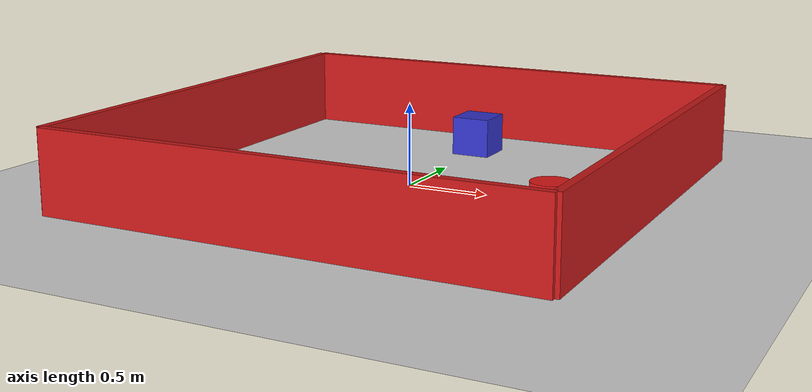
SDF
<sdf version="1.7">
 <world name="pickup_room">
  <plugin filename="gz-sim-physics-system" name="gz::sim::systems::Physics"/>
  <plugin filename="gz-sim-user-commands-system" name="gz::sim::systems::UserCommands"/>
  <plugin filename="gz-sim-scene-broadcaster-system" name="gz::sim::systems::SceneBroadcaster"/>
  <plugin filename="gz-sim-sensors-system" name="gz::sim::systems::Sensors"/>
  <plugin filename="gz-sim-imu-system" name="gz::sim::systems::Imu"/>
  <physics name="1ms" type="ignored">
   <max_step_size>0.001</max_step_size>
   <real_time_factor>1.0</real_time_factor>
  </physics>
  <gravity>0 0 -9.8</gravity>
  <magnetic_field>6e-06 2.3e-05 -4.2e-05</magnetic_field>
  <atmosphere type="adiabatic"/>
  <scene>
   <ambient>0.8 0.8 0.8 1</ambient>
   <background>0.95 0.95 0.95 1</background>
   <shadows>false</shadows>
  </scene>
  <light type="directional" name="sun">
   <pose>0 0 10 0 0 0</pose>
   <diffuse>0.9 0.9 0.9 1</diffuse>
   <specular>0.2 0.2 0.2 1</specular>
   <direction>-0.5 0.1 -0.9</direction>
  </light>
  <model name="ground_plane">
   <static>true</static>
   <link name="link">
    <collision name="collision">
     <geometry><plane><normal>0 0 1</normal><size>20 20</size></plane></geometry>
    </collision>
    <visual name="visual">
     <geometry><plane><normal>0 0 1</normal><size>20 20</size></plane></geometry>
     <material><ambient>0.85 0.85 0.85 1</ambient><diffuse>0.85 0.85 0.85 1</diffuse></material>
    </visual>
   </link>
  </model>
  <model name="wall_left">
   <static>true</static>
   <pose>-1.5 0 0.25 0 0 0</pose>
   <link name="link">
    <collision name="collision"><geometry><box><size>0.05 3.0 0.5</size></box></geometry></collision>
    <visual name="visual">
     <geometry><box><size>0.05 3.0 0.5</size></box></geometry>
     <material><ambient>0.8 0.1 0.1 1</ambient><diffuse>0.8 0.1 0.1 1</diffuse></material>
    </visual>
   </link>
  </model>
  <model name="wall_right">
   <static>true</static>
   <pose>1.5 0 0.25 0 0 0</pose>
   <link name="link">
    <collision name="collision"><geometry><box><size>0.05 3.0 0.5</size></box></geometry></collision>
    <visual name="visual">
     <geometry><box><size>0.05 3.0 0.5</size></box></geometry>
     <material><ambient>0.8 0.1 0.1 1</ambient><diffuse>0.8 0.1 0.1 1</diffuse></material>
    </visual>
   </link>
  </model>
  <model name="wall_bottom">
   <static>true</static>
   <pose>0 -1.5 0.25 0 0 0</pose>
   <link name="link">
    <collision name="collision"><geometry><box><size>3.0 0.05 0.5</size></box></geometry></collision>
    <visual name="visual">
     <geometry><box><size>3.0 0.05 0.5</size></box></geometry>
     <material><ambient>0.8 0.1 0.1 1</ambient><diffuse>0.8 0.1 0.1 1</diffuse></material>
    </visual>
   </link>
  </model>
  <model name="wall_top">
   <static>true</static>
   <pose>0 1.5 0.25 0 0 0</pose>
   <link name="link">
    <collision name="collision"><geometry><box><size>3.0 0.05 0.5</size></box></geometry></collision>
    <visual name="visual">
     <geometry><box><size>3.0 0.05 0.5</size></box></geometry>
     <material><ambient>0.8 0.1 0.1 1</ambient><diffuse>0.8 0.1 0.1 1</diffuse></material>
    </visual>
   </link>
  </model>
  <model name="static_obstacle_top_left">
   <static>true</static>
   <pose>0.00 1.00 0.125 0 0 0</pose>
   <link name="link">
    <collision name="collision"><geometry><box><size>0.25 0.25 0.25</size></box></geometry></collision>
    <visual name="visual">
     <geometry><box><size>0.25 0.25 0.25</size></box></geometry>
     <material><ambient>0.2 0.2 0.8 1</ambient><diffuse>0.2 0.2 0.8 1</diffuse></material>
    </visual>
   </link>
  </model>
  <model name="static_obstacle_bottom">
   <static>true</static>
   <pose>0.00 -1.00 0.125 0 0 0</pose>
   <link name="link">
    <collision name="collision"><geometry><box><size>0.25 0.25 0.25</size></box></geometry></collision>
    <visual name="visual">
     <geometry><box><size>0.25 0.25 0.25</size></box></geometry>
     <material><ambient>0.2 0.2 0.8 1</ambient><diffuse>0.2 0.2 0.8 1</diffuse></material>
    </visual>
   </link>
  </model>
  <model name="dynamic_obstacle">
   <static>false</static>
   <allow_auto_disable>false</allow_auto_disable>
   <pose>1.00 -0.25 0.10 0 0 0</pose>
   <link name="link">
    <gravity>false</gravity>
    <inertial>
     <mass>1.0</mass>
     <inertia><ixx>0.01</ixx><iyy>0.01</iyy><izz>0.01</izz><ixy>0.0</ixy><ixz>0.0</ixz><iyz>0.0</iyz></inertia>
    </inertial>
    <collision name="collision">
     <geometry><cylinder><radius>0.12</radius><length>0.20</length></cylinder></geometry>
    </collision>
    <visual name="visual">
     <geometry><cylinder><radius>0.12</radius><length>0.20</length></cylinder></geometry>
     <material><ambient>0.9 0.1 0.1 1</ambient><diffuse>0.9 0.1 0.1 1</diffuse></material>
    </visual>
   </link>
  </model>
  <model name="toy_left">
   <static>false</static>
   <pose>-1.2 -0.10 0.035 0 0 0</pose>
   <link name="link">
    <inertial>
     <mass>0.08</mass>
     <inertia>
      <ixx>0.0001</ixx>
      <iyy>0.0001</iyy>
      <izz>0.0001</izz>
      <ixy>0.0</ixy>
      <ixz>0.0</ixz>
      <iyz>0.0</iyz>
     </inertia>
    </inertial>
    <collision name="collision"><geometry><box><size>0.18 0.10 0.05</size></box></geometry></collision>
    <visual name="visual">
     <geometry><box><size>0.15 0.10 0.05</size></box></geometry>
     <material><ambient>0.1 0.8 0.1 1</ambient><diffuse>0.1 0.8 0.1 1</diffuse></material>
    </visual>
   </link>
  </model>
 </world>
</sdf>
